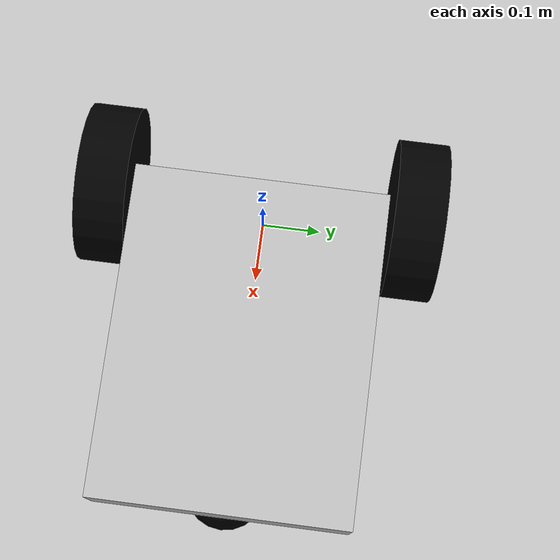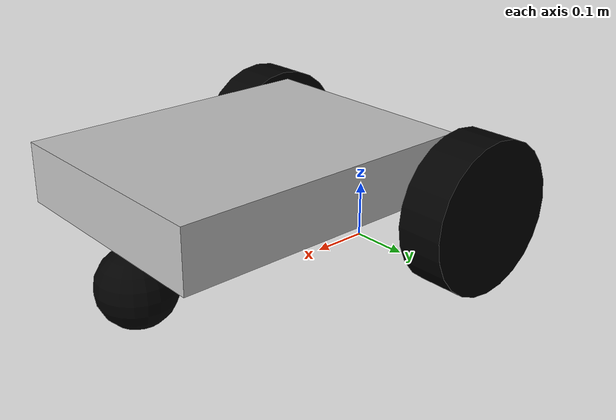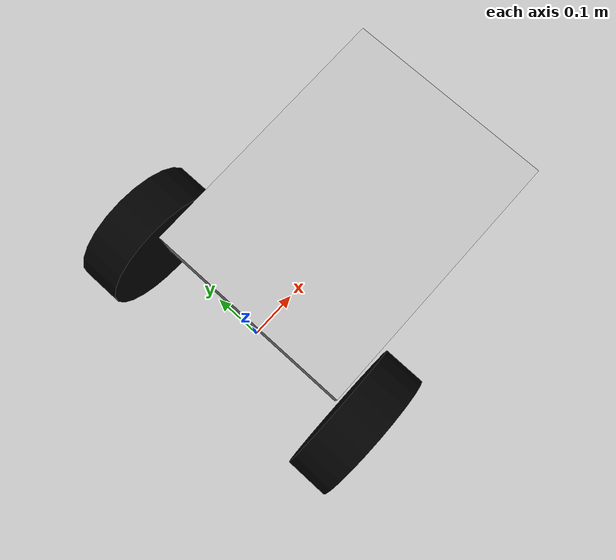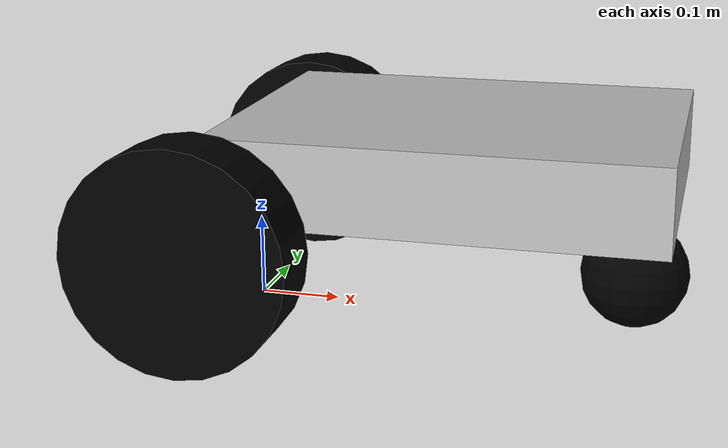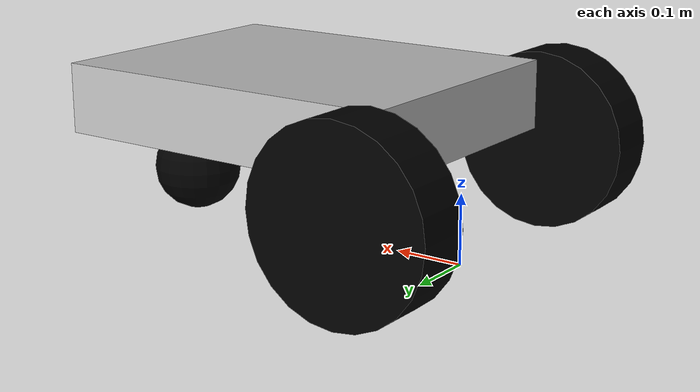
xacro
<?xml version="1.0"?>
<robot name="spongebob" xmlns:xacro="http://ros.org/wiki/xacro">

  <!-- Define robot constants -->
  <xacro:property name="wheel_radius" value="0.13"/>     <!-- radius of robot wheel-->
  <xacro:property name="wheels_base" value="0.50"/>       <!-- distance between center of left and right wheels-->

  <!-- Visual parameters -->
  <xacro:property name="caster_xoff" value="0.05"/>  <!-- x offset of caster from end of base plate -->
  <xacro:property name="wheel_width" value="0.08"/>
  <xacro:property name="base_width" value="0.40"/> <!-- Y axis -->
  <xacro:property name="base_length" value="0.52"/> <!-- X axis -->
  <xacro:property name="base_height" value="0.10"/> <!-- Z axis -->
  <xacro:property name="base_zoff" value="0.15"/>
  <xacro:property name="profile_width" value="0.03"/>

  <material name="grey">
    <color rgba="0.75 0.75 0.75 1"/>
  </material>
  <material name="blue">
    <color rgba= "0 0 1 1"/>
  </material>
  <material name="black">
    <color rgba= "0 0 0 1"/>
  </material>
  <material name="red">
    <color rgba= "1 0 0 1"/>
  </material>

  <!-- Robot Base -->
  <link name="base_link">
    <collision>
      <geometry>
        <box size="${base_length} ${base_width} ${base_height}"/>
      </geometry>
      <origin xyz="${base_length/2} 0 ${base_zoff+base_height/2}" rpy="0 0 0"/>
    </collision>
    <visual>
      <geometry>
        <box size="${base_length} ${base_width} ${base_height}"/>
      </geometry>
      <origin xyz="${base_length/2} 0 ${base_zoff+base_height/2}" rpy="0 0 0"/>
      <material name="grey"/>
    </visual>
  </link>

  <!-- Robot Footprint -->
  <link name="base_footprint"/>

  <joint name="base_joint" type="fixed">
    <parent link="base_link"/>
    <child link="base_footprint"/>
    <origin xyz="${base_length/2} 0.0 0.0" rpy="0 0 0"/>
  </joint>

  <link name="caster">
    <collision>
      <origin xyz="0 0 0" rpy="0 0 0"/>
      <geometry>
        <sphere radius="${wheel_radius/2}"/>
      </geometry>
    </collision>
    <visual>
      <origin xyz="0 0 0" rpy="0 0 0"/>
      <geometry>
        <sphere radius="${wheel_radius/2}"/>
      </geometry>
      <material name="black"/>
    </visual>
  </link>

  <joint name="caster_joint" type="continuous">
    <parent link="base_link"/>
    <child link="caster"/>
    <origin xyz="${base_length-caster_xoff} 0 ${wheel_radius/2}" rpy="0 0 0"/>
    <axis xyz="0 1 1"/>
  </joint>

  <link name="bl_wheel">
    <collision>
      <origin xyz="0 0 0" rpy="${pi/2} 0 0"/>
      <geometry>
        <cylinder radius="${wheel_radius}" length="${wheel_width}"/>
      </geometry>
    </collision>
    <visual>
      <origin xyz="0 0 0" rpy="${pi/2} 0 0"/>
      <geometry>
        <cylinder radius="${wheel_radius}" length="${wheel_width}"/>
      </geometry>
      <material name="black"/>
    </visual>
  </link>

  <joint name="bl_wheel_joint" type="continuous">
    <parent link="base_link"/>
    <child link="bl_wheel"/>
    <origin xyz="0.0 ${wheels_base/2} ${wheel_radius}" rpy="0 0 0"/>
    <axis xyz="0 1 0"/>
  </joint>

  <link name="br_wheel">
    <collision>
      <origin xyz="0 0 0" rpy="${pi/2} 0 0"/>
      <geometry>
        <cylinder radius="${wheel_radius}" length="${wheel_width}"/>
      </geometry>
    </collision>
    <visual>
      <origin xyz="0 0 0" rpy="${pi/2} 0 0"/>
      <geometry>
        <cylinder radius="${wheel_radius}" length="${wheel_width}"/>
      </geometry>
      <material name="black"/>
    </visual>
  </link>

  <joint name="br_wheel_joint" type="continuous">
    <parent link="base_link"/>
    <child link="br_wheel"/>
    <origin xyz="0.0 ${-wheels_base/2} ${wheel_radius}" rpy="0 0 0"/>
    <axis xyz="0 1 0"/>
  </joint>

</robot>
